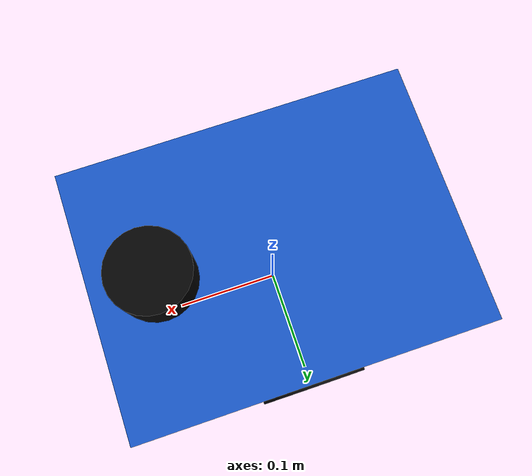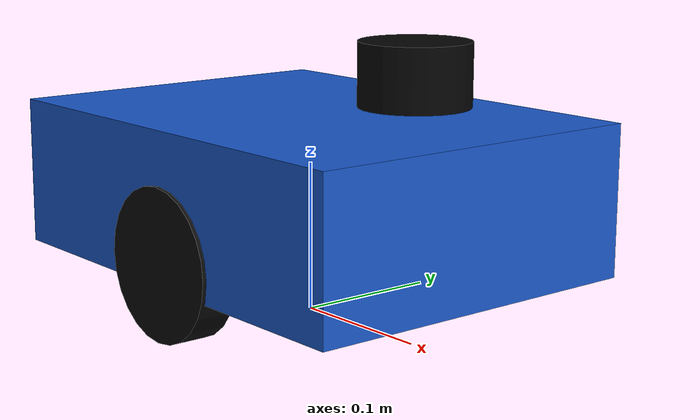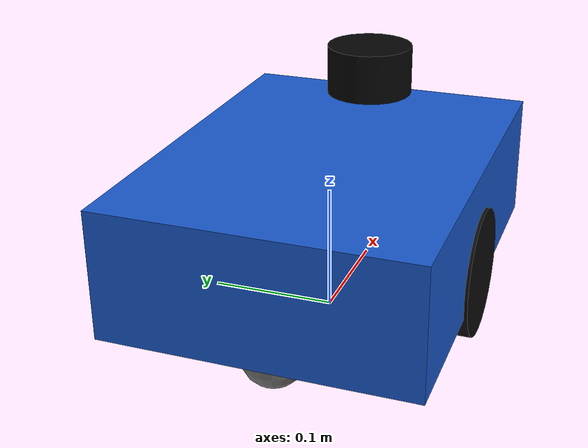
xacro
<?xml version="1.0"?>
<robot xmlns:xacro="http://www.ros.org/wiki/xacro" name="cakebot">

  <!-- ================================================================
       可配置参数
       ================================================================ -->

  <!-- 底盘尺寸 -->
  <xacro:arg name="base_length" default="0.32"/>
  <xacro:arg name="base_width" default="0.24"/>
  <xacro:arg name="base_height" default="0.10"/>
  <xacro:arg name="base_z" default="0.085"/>
  <xacro:arg name="base_mass" default="2.0"/>

  <!-- 驱动轮尺寸与位置 -->
  <xacro:arg name="wheel_radius" default="0.05"/>
  <xacro:arg name="wheel_width" default="0.025"/>
  <xacro:arg name="wheel_separation" default="0.22"/>
  <xacro:arg name="wheel_x" default="0.0"/>
  <xacro:arg name="wheel_z" default="0.05"/>
  <xacro:arg name="wheel_mass" default="0.15"/>
  <xacro:arg name="wheel_damping" default="0.01"/>

  <!--
    万向轮位置：
      caster_x > 0：前方
      caster_x < 0：后方
    例如：把 default="-0.12" 改成 default="0.12"，即可把万向轮
    从后方移动到前方。
  -->
  <xacro:arg name="caster_radius" default="0.025"/>
  <xacro:arg name="caster_x" default="-0.12"/>
  <xacro:arg name="caster_y" default="0.0"/>
  <xacro:arg name="caster_z" default="0.025"/>
  <xacro:arg name="caster_yaw" default="0.0"/>
  <xacro:arg name="caster_mass" default="0.08"/>

  <!-- 激光雷达尺寸与安装位置 -->
  <xacro:arg name="laser_radius" default="0.035"/>
  <xacro:arg name="laser_height" default="0.04"/>
  <xacro:arg name="laser_x" default="0.10"/>
  <xacro:arg name="laser_y" default="0.0"/>
  <xacro:arg name="laser_z" default="0.17"/>
  <xacro:arg name="laser_mass" default="0.08"/>

  <!--
    感知模式：
      laser_2d  : 保留原有的二维 LaserScan 传感器；
      mid360_sim: 使用带垂直扫描的三维仿真雷达，输出 PointCloud2。
    两种模式只能同时启用一种，避免产生两个传感器发布同一个接口。
  -->
  <xacro:arg name="sensor_mode" default="laser_2d"/>
  <!-- 是否在 Gazebo GUI 中绘制雷达射线；不影响传感器消息发布。 -->
  <xacro:arg name="visualize_lidar" default="true"/>
  <xacro:arg name="mid360_update_rate" default="10.0"/>
  <xacro:arg name="mid360_horizontal_samples" default="360"/>
  <!-- 仿真默认用 16 条垂直采样保持 Gazebo 在普通电脑上接近10 Hz；真机点云密度由驱动器决定。 -->
  <xacro:arg name="mid360_vertical_samples" default="16"/>
  <xacro:arg name="mid360_min_vertical_angle" default="-0.1221730476"/>
  <xacro:arg name="mid360_max_vertical_angle" default="0.9075712110"/>
  <xacro:arg name="mid360_min_range" default="0.10"/>
  <xacro:arg name="mid360_max_range" default="40.0"/>
  <xacro:arg name="mid360_range_resolution" default="0.01"/>
  <xacro:arg name="mid360_points_topic" default="lidar/points_raw"/>

  <!-- 激光雷达扫描参数 -->
  <xacro:arg name="laser_update_rate" default="10.0"/>
  <xacro:arg name="laser_samples" default="360"/>
  <xacro:arg name="laser_min_angle" default="-3.14159265359"/>
  <xacro:arg name="laser_max_angle" default="3.14159265359"/>
  <xacro:arg name="laser_min_range" default="0.12"/>
  <xacro:arg name="laser_max_range" default="8.0"/>
  <xacro:arg name="laser_range_resolution" default="0.01"/>

  <!--
    将可由命令行覆盖的 xacro:arg 映射为内部属性。
    之后只使用这些属性，避免把外部参数和模型计算混在一起。
  -->
  <xacro:property name="base_length" value="$(arg base_length)"/>
  <xacro:property name="base_width" value="$(arg base_width)"/>
  <xacro:property name="base_height" value="$(arg base_height)"/>
  <xacro:property name="base_z" value="$(arg base_z)"/>
  <xacro:property name="base_mass" value="$(arg base_mass)"/>

  <xacro:property name="wheel_radius" value="$(arg wheel_radius)"/>
  <xacro:property name="wheel_width" value="$(arg wheel_width)"/>
  <xacro:property name="wheel_separation" value="$(arg wheel_separation)"/>
  <xacro:property name="wheel_x" value="$(arg wheel_x)"/>
  <xacro:property name="wheel_z" value="$(arg wheel_z)"/>
  <xacro:property name="wheel_mass" value="$(arg wheel_mass)"/>
  <xacro:property name="wheel_damping" value="$(arg wheel_damping)"/>

  <xacro:property name="caster_radius" value="$(arg caster_radius)"/>
  <xacro:property name="caster_x" value="$(arg caster_x)"/>
  <xacro:property name="caster_y" value="$(arg caster_y)"/>
  <xacro:property name="caster_z" value="$(arg caster_z)"/>
  <xacro:property name="caster_yaw" value="$(arg caster_yaw)"/>
  <xacro:property name="caster_mass" value="$(arg caster_mass)"/>

  <xacro:property name="laser_radius" value="$(arg laser_radius)"/>
  <xacro:property name="laser_height" value="$(arg laser_height)"/>
  <xacro:property name="laser_x" value="$(arg laser_x)"/>
  <xacro:property name="laser_y" value="$(arg laser_y)"/>
  <xacro:property name="laser_z" value="$(arg laser_z)"/>
  <xacro:property name="laser_mass" value="$(arg laser_mass)"/>

  <xacro:property name="sensor_mode" value="$(arg sensor_mode)"/>
  <xacro:property name="visualize_lidar" value="$(arg visualize_lidar)"/>
  <xacro:property name="mid360_update_rate" value="$(arg mid360_update_rate)"/>
  <xacro:property name="mid360_horizontal_samples" value="$(arg mid360_horizontal_samples)"/>
  <xacro:property name="mid360_vertical_samples" value="$(arg mid360_vertical_samples)"/>
  <xacro:property name="mid360_min_vertical_angle" value="$(arg mid360_min_vertical_angle)"/>
  <xacro:property name="mid360_max_vertical_angle" value="$(arg mid360_max_vertical_angle)"/>
  <xacro:property name="mid360_min_range" value="$(arg mid360_min_range)"/>
  <xacro:property name="mid360_max_range" value="$(arg mid360_max_range)"/>
  <xacro:property name="mid360_range_resolution" value="$(arg mid360_range_resolution)"/>
  <xacro:property name="mid360_points_topic" value="$(arg mid360_points_topic)"/>

  <xacro:property name="laser_update_rate" value="$(arg laser_update_rate)"/>
  <xacro:property name="laser_samples" value="$(arg laser_samples)"/>
  <xacro:property name="laser_min_angle" value="$(arg laser_min_angle)"/>
  <xacro:property name="laser_max_angle" value="$(arg laser_max_angle)"/>
  <xacro:property name="laser_min_range" value="$(arg laser_min_range)"/>
  <xacro:property name="laser_max_range" value="$(arg laser_max_range)"/>
  <xacro:property name="laser_range_resolution" value="$(arg laser_range_resolution)"/>

  <!-- ================================================================
       可复用宏
       ================================================================ -->

  <!-- 长方体惯性，x/y/z 为长方体三个方向的尺寸 -->
  <xacro:macro name="box_inertial" params="mass x y z origin_z">
    <inertial>
      <origin xyz="0 0 ${origin_z}" rpy="0 0 0"/>
      <mass value="${mass}"/>
      <inertia
        ixx="${mass * (y * y + z * z) / 12.0}"
        ixy="0.0"
        ixz="0.0"
        iyy="${mass * (x * x + z * z) / 12.0}"
        iyz="0.0"
        izz="${mass * (x * x + y * y) / 12.0}"/>
    </inertial>
  </xacro:macro>

  <!-- 圆柱惯性：宏内部默认圆柱轴线为 z 轴。 -->
  <xacro:macro name="cylinder_inertial" params="mass radius length origin_rpy">
    <inertial>
      <origin xyz="0 0 0" rpy="${origin_rpy}"/>
      <mass value="${mass}"/>
      <inertia
        ixx="${mass * (3.0 * radius * radius + length * length) / 12.0}"
        ixy="0.0"
        ixz="0.0"
        iyy="${mass * (3.0 * radius * radius + length * length) / 12.0}"
        iyz="0.0"
        izz="${mass * radius * radius / 2.0}"/>
    </inertial>
  </xacro:macro>

  <!-- 球体惯性。球体的质心位于 link 原点。 -->
  <xacro:macro name="sphere_inertial" params="mass radius">
    <inertial>
      <origin xyz="0 0 0" rpy="0 0 0"/>
      <mass value="${mass}"/>
      <inertia
        ixx="${2.0 * mass * radius * radius / 5.0}"
        ixy="0.0"
        ixz="0.0"
        iyy="${2.0 * mass * radius * radius / 5.0}"
        iyz="0.0"
        izz="${2.0 * mass * radius * radius / 5.0}"/>
    </inertial>
  </xacro:macro>

  <!-- 差速驱动轮。y 为轮轴中心相对于 base_link 的横向位置。 -->
  <xacro:macro name="drive_wheel" params="side y">
    <link name="${side}_wheel_link">
      <visual>
        <origin xyz="0 0 0" rpy="${pi / 2.0} 0 0"/>
        <geometry>
          <cylinder radius="${wheel_radius}" length="${wheel_width}"/>
        </geometry>
        <material name="wheel_black"/>
      </visual>

      <collision>
        <origin xyz="0 0 0" rpy="${pi / 2.0} 0 0"/>
        <geometry>
          <cylinder radius="${wheel_radius}" length="${wheel_width}"/>
        </geometry>
      </collision>

      <!-- 惯性坐标系随圆柱一起绕 x 轴旋转，使圆柱轴线为 y 轴。 -->
      <xacro:cylinder_inertial
        mass="${wheel_mass}"
        radius="${wheel_radius}"
        length="${wheel_width}"
        origin_rpy="${pi / 2.0} 0 0"/>
    </link>

    <joint name="${side}_wheel_joint" type="continuous">
      <parent link="base_link"/>
      <child link="${side}_wheel_link"/>
      <origin xyz="${wheel_x} ${y} ${wheel_z}" rpy="0 0 0"/>
      <axis xyz="0 1 0"/>
      <dynamics damping="${wheel_damping}" friction="0.0"/>
    </joint>
  </xacro:macro>

  <!-- ================================================================
       材质
       ================================================================ -->

  <material name="cakebot_blue">
    <color rgba="0.10 0.35 0.80 1.0"/>
  </material>

  <material name="wheel_black">
    <color rgba="0.04 0.04 0.04 1.0"/>
  </material>

  <material name="caster_gray">
    <color rgba="0.45 0.45 0.45 1.0"/>
  </material>

  <material name="laser_black">
    <color rgba="0.02 0.02 0.02 1.0"/>
  </material>

  <!-- ================================================================
       机器人主体
       ================================================================ -->

  <link name="base_link">
    <visual>
      <origin xyz="0 0 ${base_z}" rpy="0 0 0"/>
      <geometry>
        <box size="${base_length} ${base_width} ${base_height}"/>
      </geometry>
      <material name="cakebot_blue"/>
    </visual>

    <collision>
      <origin xyz="0 0 ${base_z}" rpy="0 0 0"/>
      <geometry>
        <box size="${base_length} ${base_width} ${base_height}"/>
      </geometry>
    </collision>

    <xacro:box_inertial
      mass="${base_mass}"
      x="${base_length}"
      y="${base_width}"
      z="${base_height}"
      origin_z="${base_z}"/>
  </link>

  <!-- 左右驱动轮：左为 +y，右为 -y。 -->
  <xacro:drive_wheel side="left" y="${wheel_separation / 2.0}"/>
  <xacro:drive_wheel side="right" y="${-wheel_separation / 2.0}"/>

  <!--
    简化万向轮：当前使用球体表示，采用 fixed joint。
    caster_x/caster_y/caster_z/caster_yaw 均可直接调整。
    当前用简化球体保证仿真模型闭合；实物尺寸确定后，再替换为真实
    的万向轮支架和碰撞几何。
  -->
  <link name="caster_link">
    <visual>
      <origin xyz="0 0 0" rpy="0 0 0"/>
      <geometry>
        <sphere radius="${caster_radius}"/>
      </geometry>
      <material name="caster_gray"/>
    </visual>

    <collision>
      <origin xyz="0 0 0" rpy="0 0 0"/>
      <geometry>
        <sphere radius="${caster_radius}"/>
      </geometry>
    </collision>

    <xacro:sphere_inertial mass="${caster_mass}" radius="${caster_radius}"/>
  </link>

  <joint name="caster_joint" type="fixed">
    <parent link="base_link"/>
    <child link="caster_link"/>
    <origin xyz="${caster_x} ${caster_y} ${caster_z}" rpy="0 0 ${caster_yaw}"/>
  </joint>

  <!-- 激光雷达安装座。雷达坐标系 z 轴向上，x 轴指向机器人前方。 -->
  <link name="laser_link">
    <visual>
      <origin xyz="0 0 0" rpy="0 0 0"/>
      <geometry>
        <cylinder radius="${laser_radius}" length="${laser_height}"/>
      </geometry>
      <material name="laser_black"/>
    </visual>

    <collision>
      <origin xyz="0 0 0" rpy="0 0 0"/>
      <geometry>
        <cylinder radius="${laser_radius}" length="${laser_height}"/>
      </geometry>
    </collision>

    <xacro:cylinder_inertial
      mass="${laser_mass}"
      radius="${laser_radius}"
      length="${laser_height}"
      origin_rpy="0 0 0"/>
  </link>

  <joint name="laser_joint" type="fixed">
    <parent link="base_link"/>
    <child link="laser_link"/>
    <origin xyz="${laser_x} ${laser_y} ${laser_z}" rpy="0 0 0"/>
  </joint>

  <!--
    Gazebo Classic 二维激光雷达。扫描结果发布到 /scan。
    这是默认模式，用于保持阶段 5–8 的旧流程可回归。
  -->
  <xacro:if value="${sensor_mode == 'laser_2d'}">
    <gazebo reference="laser_link">
      <sensor name="cakebot_laser" type="ray">
        <pose>0 0 0 0 0 0</pose>
        <visualize>${visualize_lidar}</visualize>
        <update_rate>${laser_update_rate}</update_rate>
        <ray>
          <scan>
            <horizontal>
              <samples>${laser_samples}</samples>
              <resolution>1</resolution>
              <min_angle>${laser_min_angle}</min_angle>
              <max_angle>${laser_max_angle}</max_angle>
            </horizontal>
          </scan>
          <range>
            <min>${laser_min_range}</min>
            <max>${laser_max_range}</max>
            <resolution>${laser_range_resolution}</resolution>
          </range>
        </ray>

        <plugin name="cakebot_laser_sensor" filename="libgazebo_ros_ray_sensor.so">
          <ros>
            <remapping>~/out:=scan</remapping>
          </ros>
          <output_type>sensor_msgs/LaserScan</output_type>
          <frame_name>laser_link</frame_name>
        </plugin>
      </sensor>
    </gazebo>
  </xacro:if>

  <!--
    Gazebo Classic MID-360 近似仿真：水平 360 度、垂直 -7 度到 52 度。
    输出为 sensor_msgs/PointCloud2，供 cakebot_perception 转换为 /scan。
    这个模式不直接发布 /scan，避免与点云适配器重复。
  -->
  <xacro:if value="${sensor_mode == 'mid360_sim'}">
    <gazebo reference="laser_link">
      <sensor name="cakebot_mid360" type="ray">
        <pose>0 0 0 0 0 0</pose>
        <visualize>${visualize_lidar}</visualize>
        <update_rate>${mid360_update_rate}</update_rate>
        <ray>
          <scan>
            <horizontal>
              <samples>${mid360_horizontal_samples}</samples>
              <resolution>1</resolution>
              <min_angle>-3.14159265359</min_angle>
              <max_angle>3.14159265359</max_angle>
            </horizontal>
            <vertical>
              <samples>${mid360_vertical_samples}</samples>
              <resolution>1</resolution>
              <min_angle>${mid360_min_vertical_angle}</min_angle>
              <max_angle>${mid360_max_vertical_angle}</max_angle>
            </vertical>
          </scan>
          <range>
            <min>${mid360_min_range}</min>
            <max>${mid360_max_range}</max>
            <resolution>${mid360_range_resolution}</resolution>
          </range>
        </ray>

        <plugin name="cakebot_mid360_sensor" filename="libgazebo_ros_ray_sensor.so">
          <ros>
            <remapping>~/out:=${mid360_points_topic}</remapping>
          </ros>
          <output_type>sensor_msgs/PointCloud2</output_type>
          <frame_name>laser_link</frame_name>
        </plugin>
      </sensor>
    </gazebo>
  </xacro:if>

  <gazebo>
    <plugin name="cakebot_diff_drive" filename="libgazebo_ros_diff_drive.so">
      <ros>
        <remapping>cmd_vel:=cmd_vel</remapping>
        <remapping>odom:=odom</remapping>
      </ros>

      <!-- 驱动轮关节 -->
      <left_joint>left_wheel_joint</left_joint>
      <right_joint>right_wheel_joint</right_joint>

      <!-- 差速运动学参数 -->
      <wheel_separation>${wheel_separation}</wheel_separation>
      <wheel_diameter>${2.0 * wheel_radius}</wheel_diameter>

      <!-- 电机仿真限制 -->
      <max_wheel_torque>20.0</max_wheel_torque>
      <max_wheel_acceleration>2.0</max_wheel_acceleration>

      <!-- 输出 -->
      <command_topic>cmd_vel</command_topic>
      <publish_odom>true</publish_odom>
      <publish_odom_tf>true</publish_odom_tf>
      <publish_wheel_tf>true</publish_wheel_tf>
      <odometry_topic>odom</odometry_topic>
      <odometry_frame>odom</odometry_frame>
      <robot_base_frame>base_link</robot_base_frame>
      <update_rate>50</update_rate>
    </plugin>
  </gazebo>

</robot>
